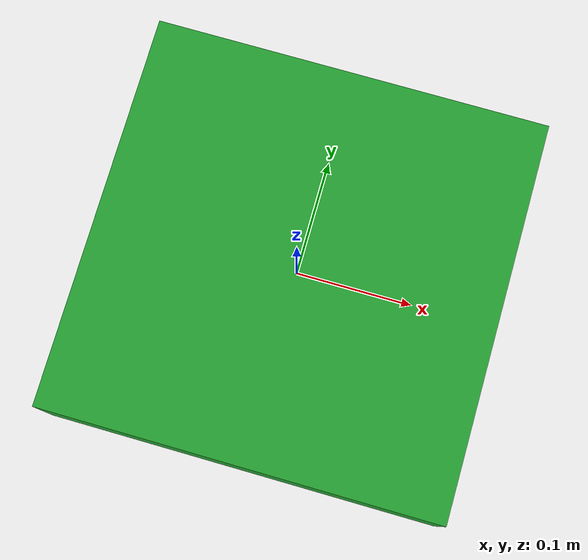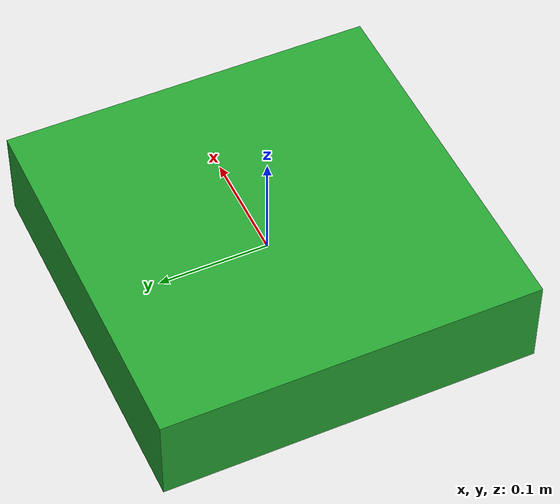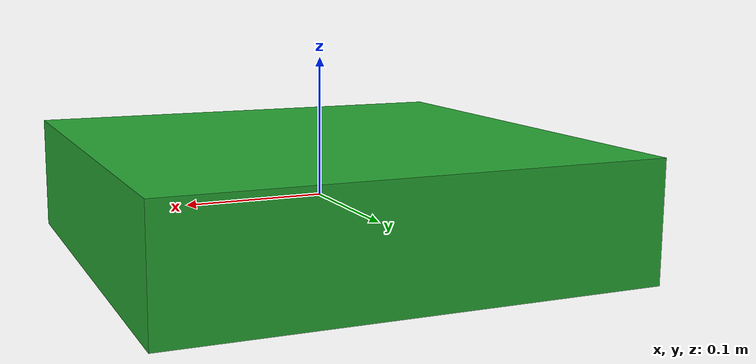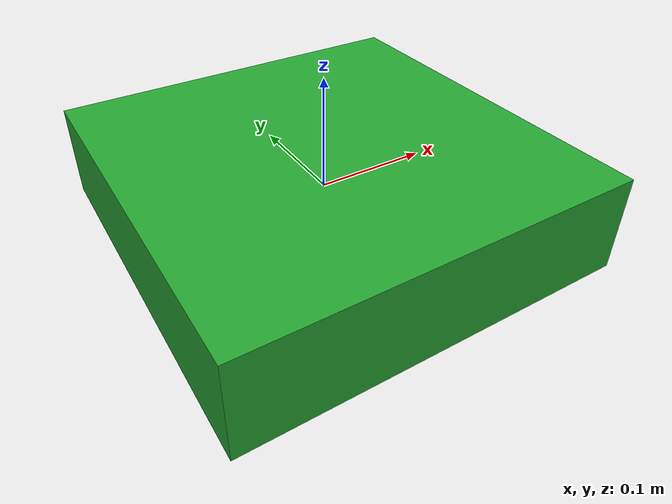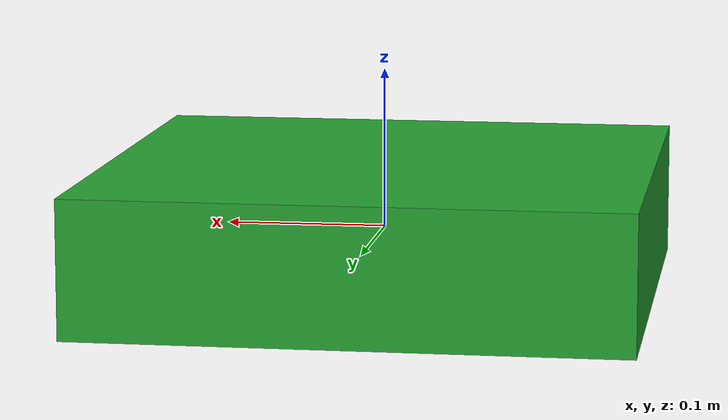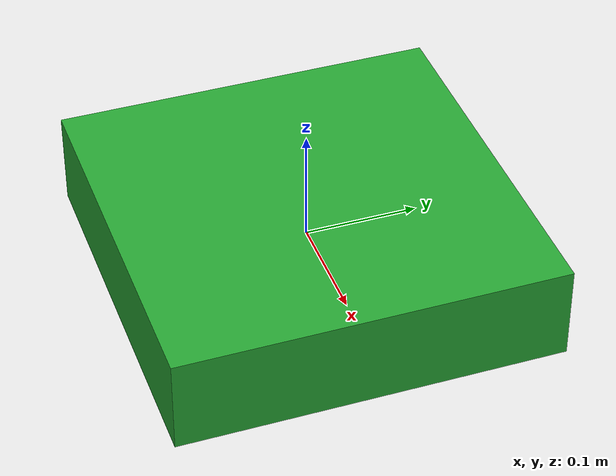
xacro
<?xml version="1.0"?>

<robot name="item" xmlns:xacro="http://ros.org/wiki/xacro">

  <link name="base">
    <inertial>
      <origin xyz="0 0 0"/>
      <mass value="0.001" />
      <inertia  ixx="0.0" ixy="1.0"  ixz="0.0"  iyy="1.0"  iyz="0.0"  izz="1.0" />
    </inertial>
    <visual>
      <geometry>
        <box size="0.34 0.34 0.085"/>
      </geometry>
    </visual>
    <collision>
      <geometry>
        <box size="0.34 0.34 0.085"/>
      </geometry>
    </collision>
  </link>

  <gazebo reference="base">
    <material>Gazebo/Green</material>
  </gazebo>

  <gazebo>
  </gazebo>
</robot>
